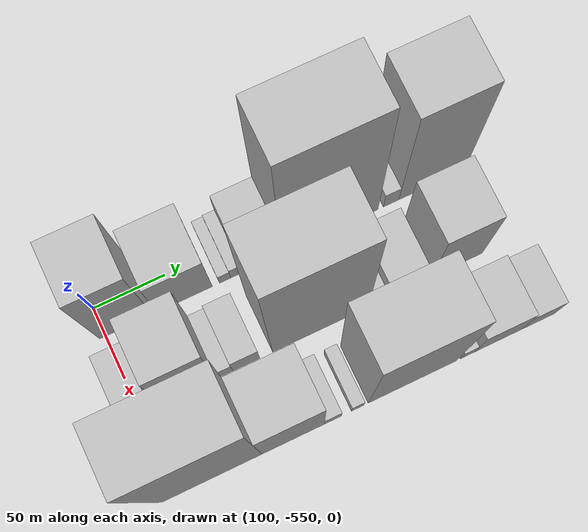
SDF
<sdf version="1.6">
 <world name="default">
  <model name="building_1">
   <static>1</static>
   <pose>100.0000 -535.5505 0 0.000000 0.000000 0.000000</pose>
   <link name="link">
    <pose>0 0 58.50 0 0 0</pose>
    <collision name="collision"><geometry><box><size>40.0000 36.8990 117.0000</size></box></geometry></collision>
    <visual name="visual">
     <cast_shadows>0</cast_shadows>
     <geometry><box><size>40.0000 36.8990 117.0000</size></box></geometry>
     <material>
      <script>
       <uri>model://HANNAS_wall/materials/scripts</uri>
       <uri>model://HANNAS_wall/materials/textures</uri>
       <name>vrc/HANNAS_wall</name>
      </script>
     </material>
    </visual>
   </link>
  </model>
  <model name="building_2">
   <static>1</static>
   <pose>100.0000 -494.7667 0 0.000000 0.000000 0.000000</pose>
   <link name="link">
    <pose>0 0 36.00 0 0 0</pose>
    <collision name="collision"><geometry><box><size>40.0000 38.6686 72.0000</size></box></geometry></collision>
    <visual name="visual">
     <cast_shadows>0</cast_shadows>
     <geometry><box><size>40.0000 38.6686 72.0000</size></box></geometry>
     <material>
      <script>
       <uri>model://HANNAS_wall/materials/scripts</uri>
       <uri>model://HANNAS_wall/materials/textures</uri>
       <name>vrc/HANNAS_wall</name>
      </script>
     </material>
    </visual>
   </link>
  </model>
  <model name="building_3">
   <static>1</static>
   <pose>100.0000 -466.4745 0 0.000000 0.000000 0.000000</pose>
   <link name="link">
    <pose>0 0 9.00 0 0 0</pose>
    <collision name="collision"><geometry><box><size>40.0000 7.9157 18.0000</size></box></geometry></collision>
    <visual name="visual">
     <cast_shadows>0</cast_shadows>
     <geometry><box><size>40.0000 7.9157 18.0000</size></box></geometry>
     <material>
      <script>
       <uri>model://HANNAS_wall/materials/scripts</uri>
       <uri>model://HANNAS_wall/materials/textures</uri>
       <name>vrc/HANNAS_wall</name>
      </script>
     </material>
    </visual>
   </link>
  </model>
  <model name="building_4">
   <static>1</static>
   <pose>100.0000 -458.2818 0 0.000000 0.000000 0.000000</pose>
   <link name="link">
    <pose>0 0 10.50 0 0 0</pose>
    <collision name="collision"><geometry><box><size>40.0000 8.4698 21.0000</size></box></geometry></collision>
    <visual name="visual">
     <cast_shadows>0</cast_shadows>
     <geometry><box><size>40.0000 8.4698 21.0000</size></box></geometry>
     <material>
      <script>
       <uri>model://HANNAS_wall/materials/scripts</uri>
       <uri>model://HANNAS_wall/materials/textures</uri>
       <name>vrc/HANNAS_wall</name>
      </script>
     </material>
    </visual>
   </link>
  </model>
  <model name="building_5">
   <static>1</static>
   <pose>100.0000 -440.0761 0 0.000000 0.000000 0.000000</pose>
   <link name="link">
    <pose>0 0 27.00 0 0 0</pose>
    <collision name="collision"><geometry><box><size>40.0000 27.9417 54.0000</size></box></geometry></collision>
    <visual name="visual">
     <cast_shadows>0</cast_shadows>
     <geometry><box><size>40.0000 27.9417 54.0000</size></box></geometry>
     <material>
      <script>
       <uri>model://HANNAS_wall/materials/scripts</uri>
       <uri>model://HANNAS_wall/materials/textures</uri>
       <name>vrc/HANNAS_wall</name>
      </script>
     </material>
    </visual>
   </link>
  </model>
  <model name="building_6">
   <static>1</static>
   <pose>100.0000 -391.7738 0 0.000000 0.000000 0.000000</pose>
   <link name="link">
    <pose>0 0 97.50 0 0 0</pose>
    <collision name="collision"><geometry><box><size>40.0000 68.6630 195.0000</size></box></geometry></collision>
    <visual name="visual">
     <cast_shadows>0</cast_shadows>
     <geometry><box><size>40.0000 68.6630 195.0000</size></box></geometry>
     <material>
      <script>
       <uri>model://HANNAS_wall/materials/scripts</uri>
       <uri>model://HANNAS_wall/materials/textures</uri>
       <name>vrc/HANNAS_wall</name>
      </script>
     </material>
    </visual>
   </link>
  </model>
  <model name="building_7">
   <static>1</static>
   <pose>100.0000 -347.8952 0 0.000000 0.000000 0.000000</pose>
   <link name="link">
    <pose>0 0 13.50 0 0 0</pose>
    <collision name="collision"><geometry><box><size>40.0000 11.0942 27.0000</size></box></geometry></collision>
    <visual name="visual">
     <cast_shadows>0</cast_shadows>
     <geometry><box><size>40.0000 11.0942 27.0000</size></box></geometry>
     <material>
      <script>
       <uri>model://HANNAS_wall/materials/scripts</uri>
       <uri>model://HANNAS_wall/materials/textures</uri>
       <name>vrc/HANNAS_wall</name>
      </script>
     </material>
    </visual>
   </link>
  </model>
  <model name="building_8">
   <static>1</static>
   <pose>100.0000 -318.2536 0 0.000000 0.000000 0.000000</pose>
   <link name="link">
    <pose>0 0 79.50 0 0 0</pose>
    <collision name="collision"><geometry><box><size>40.0000 48.1891 159.0000</size></box></geometry></collision>
    <visual name="visual">
     <cast_shadows>0</cast_shadows>
     <geometry><box><size>40.0000 48.1891 159.0000</size></box></geometry>
     <material>
      <script>
       <uri>model://HANNAS_wall/materials/scripts</uri>
       <uri>model://HANNAS_wall/materials/textures</uri>
       <name>vrc/HANNAS_wall</name>
      </script>
     </material>
    </visual>
   </link>
  </model>
  <model name="building_37">
   <static>1</static>
   <pose>155.0000 -549.6959 0 0.000000 0.000000 0.000000</pose>
   <link name="link">
    <pose>0 0 19.50 0 0 0</pose>
    <collision name="collision"><geometry><box><size>40.0000 20.6082 39.0000</size></box></geometry></collision>
    <visual name="visual">
     <cast_shadows>0</cast_shadows>
     <geometry><box><size>40.0000 20.6082 39.0000</size></box></geometry>
     <material>
      <script>
       <uri>model://HANNAS_wall/materials/scripts</uri>
       <uri>model://HANNAS_wall/materials/textures</uri>
       <name>vrc/HANNAS_wall</name>
      </script>
     </material>
    </visual>
   </link>
  </model>
  <model name="building_38">
   <static>1</static>
   <pose>155.0000 -515.3223 0 0.000000 0.000000 0.000000</pose>
   <link name="link">
    <pose>0 0 54.00 0 0 0</pose>
    <collision name="collision"><geometry><box><size>40.0000 36.1389 108.0000</size></box></geometry></collision>
    <visual name="visual">
     <cast_shadows>0</cast_shadows>
     <geometry><box><size>40.0000 36.1389 108.0000</size></box></geometry>
     <material>
      <script>
       <uri>model://HANNAS_wall/materials/scripts</uri>
       <uri>model://HANNAS_wall/materials/textures</uri>
       <name>vrc/HANNAS_wall</name>
      </script>
     </material>
    </visual>
   </link>
  </model>
  <model name="building_39">
   <static>1</static>
   <pose>155.0000 -491.7513 0 0.000000 0.000000 0.000000</pose>
   <link name="link">
    <pose>0 0 12.00 0 0 0</pose>
    <collision name="collision"><geometry><box><size>40.0000 11.0030 24.0000</size></box></geometry></collision>
    <visual name="visual">
     <cast_shadows>0</cast_shadows>
     <geometry><box><size>40.0000 11.0030 24.0000</size></box></geometry>
     <material>
      <script>
       <uri>model://HANNAS_wall/materials/scripts</uri>
       <uri>model://HANNAS_wall/materials/textures</uri>
       <name>vrc/HANNAS_wall</name>
      </script>
     </material>
    </visual>
   </link>
  </model>
  <model name="building_40">
   <static>1</static>
   <pose>155.0000 -476.9109 0 0.000000 0.000000 0.000000</pose>
   <link name="link">
    <pose>0 0 16.50 0 0 0</pose>
    <collision name="collision"><geometry><box><size>40.0000 18.6778 33.0000</size></box></geometry></collision>
    <visual name="visual">
     <cast_shadows>0</cast_shadows>
     <geometry><box><size>40.0000 18.6778 33.0000</size></box></geometry>
     <material>
      <script>
       <uri>model://HANNAS_wall/materials/scripts</uri>
       <uri>model://HANNAS_wall/materials/textures</uri>
       <name>vrc/HANNAS_wall</name>
      </script>
     </material>
    </visual>
   </link>
  </model>
  <model name="building_41">
   <static>1</static>
   <pose>155.0000 -424.9604 0 0.000000 0.000000 0.000000</pose>
   <link name="link">
    <pose>0 0 96.00 0 0 0</pose>
    <collision name="collision"><geometry><box><size>40.0000 67.2231 192.0000</size></box></geometry></collision>
    <visual name="visual">
     <cast_shadows>0</cast_shadows>
     <geometry><box><size>40.0000 67.2231 192.0000</size></box></geometry>
     <material>
      <script>
       <uri>model://HANNAS_wall/materials/scripts</uri>
       <uri>model://HANNAS_wall/materials/textures</uri>
       <name>vrc/HANNAS_wall</name>
      </script>
     </material>
    </visual>
   </link>
  </model>
  <model name="building_42">
   <static>1</static>
   <pose>155.0000 -385.1806 0 0.000000 0.000000 0.000000</pose>
   <link name="link">
    <pose>0 0 13.50 0 0 0</pose>
    <collision name="collision"><geometry><box><size>40.0000 12.3365 27.0000</size></box></geometry></collision>
    <visual name="visual">
     <cast_shadows>0</cast_shadows>
     <geometry><box><size>40.0000 12.3365 27.0000</size></box></geometry>
     <material>
      <script>
       <uri>model://HANNAS_wall/materials/scripts</uri>
       <uri>model://HANNAS_wall/materials/textures</uri>
       <name>vrc/HANNAS_wall</name>
      </script>
     </material>
    </visual>
   </link>
  </model>
  <model name="building_43">
   <static>1</static>
   <pose>155.0000 -365.5989 0 0.000000 0.000000 0.000000</pose>
   <link name="link">
    <pose>0 0 24.00 0 0 0</pose>
    <collision name="collision"><geometry><box><size>40.0000 26.8269 48.0000</size></box></geometry></collision>
    <visual name="visual">
     <cast_shadows>0</cast_shadows>
     <geometry><box><size>40.0000 26.8269 48.0000</size></box></geometry>
     <material>
      <script>
       <uri>model://HANNAS_wall/materials/scripts</uri>
       <uri>model://HANNAS_wall/materials/textures</uri>
       <name>vrc/HANNAS_wall</name>
      </script>
     </material>
    </visual>
   </link>
  </model>
  <model name="building_44">
   <static>1</static>
   <pose>155.0000 -327.8745 0 0.000000 0.000000 0.000000</pose>
   <link name="link">
    <pose>0 0 48.00 0 0 0</pose>
    <collision name="collision"><geometry><box><size>40.0000 36.6219 96.0000</size></box></geometry></collision>
    <visual name="visual">
     <cast_shadows>0</cast_shadows>
     <geometry><box><size>40.0000 36.6219 96.0000</size></box></geometry>
     <material>
      <script>
       <uri>model://HANNAS_wall/materials/scripts</uri>
       <uri>model://HANNAS_wall/materials/textures</uri>
       <name>vrc/HANNAS_wall</name>
      </script>
     </material>
    </visual>
   </link>
  </model>
  <model name="building_68">
   <static>1</static>
   <pose>210.0000 -525.7939 0 0.000000 0.000000 0.000000</pose>
   <link name="link">
    <pose>0 0 94.50 0 0 0</pose>
    <collision name="collision"><geometry><box><size>40.0000 68.4122 189.0000</size></box></geometry></collision>
    <visual name="visual">
     <cast_shadows>0</cast_shadows>
     <geometry><box><size>40.0000 68.4122 189.0000</size></box></geometry>
     <material>
      <script>
       <uri>model://HANNAS_wall/materials/scripts</uri>
       <uri>model://HANNAS_wall/materials/textures</uri>
       <name>vrc/HANNAS_wall</name>
      </script>
     </material>
    </visual>
   </link>
  </model>
  <model name="building_69">
   <static>1</static>
   <pose>210.0000 -470.1183 0 0.000000 0.000000 0.000000</pose>
   <link name="link">
    <pose>0 0 55.50 0 0 0</pose>
    <collision name="collision"><geometry><box><size>40.0000 42.9390 111.0000</size></box></geometry></collision>
    <visual name="visual">
     <cast_shadows>0</cast_shadows>
     <geometry><box><size>40.0000 42.9390 111.0000</size></box></geometry>
     <material>
      <script>
       <uri>model://HANNAS_wall/materials/scripts</uri>
       <uri>model://HANNAS_wall/materials/textures</uri>
       <name>vrc/HANNAS_wall</name>
      </script>
     </material>
    </visual>
   </link>
  </model>
  <model name="building_70">
   <static>1</static>
   <pose>210.0000 -442.7372 0 0.000000 0.000000 0.000000</pose>
   <link name="link">
    <pose>0 0 12.00 0 0 0</pose>
    <collision name="collision"><geometry><box><size>40.0000 11.8231 24.0000</size></box></geometry></collision>
    <visual name="visual">
     <cast_shadows>0</cast_shadows>
     <geometry><box><size>40.0000 11.8231 24.0000</size></box></geometry>
     <material>
      <script>
       <uri>model://HANNAS_wall/materials/scripts</uri>
       <uri>model://HANNAS_wall/materials/textures</uri>
       <name>vrc/HANNAS_wall</name>
      </script>
     </material>
    </visual>
   </link>
  </model>
  <model name="building_71">
   <static>1</static>
   <pose>210.0000 -425.5151 0 0.000000 0.000000 0.000000</pose>
   <link name="link">
    <pose>0 0 10.50 0 0 0</pose>
    <collision name="collision"><geometry><box><size>40.0000 8.6212 21.0000</size></box></geometry></collision>
    <visual name="visual">
     <cast_shadows>0</cast_shadows>
     <geometry><box><size>40.0000 8.6212 21.0000</size></box></geometry>
     <material>
      <script>
       <uri>model://HANNAS_wall/materials/scripts</uri>
       <uri>model://HANNAS_wall/materials/textures</uri>
       <name>vrc/HANNAS_wall</name>
      </script>
     </material>
    </visual>
   </link>
  </model>
  <model name="building_72">
   <static>1</static>
   <pose>210.0000 -387.2562 0 0.000000 0.000000 0.000000</pose>
   <link name="link">
    <pose>0 0 81.00 0 0 0</pose>
    <collision name="collision"><geometry><box><size>40.0000 61.8966 162.0000</size></box></geometry></collision>
    <visual name="visual">
     <cast_shadows>0</cast_shadows>
     <geometry><box><size>40.0000 61.8966 162.0000</size></box></geometry>
     <material>
      <script>
       <uri>model://HANNAS_wall/materials/scripts</uri>
       <uri>model://HANNAS_wall/materials/textures</uri>
       <name>vrc/HANNAS_wall</name>
      </script>
     </material>
    </visual>
   </link>
  </model>
  <model name="building_73">
   <static>1</static>
   <pose>210.0000 -348.2976 0 0.000000 0.000000 0.000000</pose>
   <link name="link">
    <pose>0 0 12.00 0 0 0</pose>
    <collision name="collision"><geometry><box><size>40.0000 10.0205 24.0000</size></box></geometry></collision>
    <visual name="visual">
     <cast_shadows>0</cast_shadows>
     <geometry><box><size>40.0000 10.0205 24.0000</size></box></geometry>
     <material>
      <script>
       <uri>model://HANNAS_wall/materials/scripts</uri>
       <uri>model://HANNAS_wall/materials/textures</uri>
       <name>vrc/HANNAS_wall</name>
      </script>
     </material>
    </visual>
   </link>
  </model>
  <model name="building_74">
   <static>1</static>
   <pose>210.0000 -326.3719 0 0.000000 0.000000 0.000000</pose>
   <link name="link">
    <pose>0 0 28.50 0 0 0</pose>
    <collision name="collision"><geometry><box><size>40.0000 33.8310 57.0000</size></box></geometry></collision>
    <visual name="visual">
     <cast_shadows>0</cast_shadows>
     <geometry><box><size>40.0000 33.8310 57.0000</size></box></geometry>
     <material>
      <script>
       <uri>model://HANNAS_wall/materials/scripts</uri>
       <uri>model://HANNAS_wall/materials/textures</uri>
       <name>vrc/HANNAS_wall</name>
      </script>
     </material>
    </visual>
   </link>
  </model>
  <model name="building_75">
   <static>1</static>
   <pose>210.0000 -297.6768 0 0.000000 0.000000 0.000000</pose>
   <link name="link">
    <pose>0 0 21.00 0 0 0</pose>
    <collision name="collision"><geometry><box><size>40.0000 23.5592 42.0000</size></box></geometry></collision>
    <visual name="visual">
     <cast_shadows>0</cast_shadows>
     <geometry><box><size>40.0000 23.5592 42.0000</size></box></geometry>
     <material>
      <script>
       <uri>model://HANNAS_wall/materials/scripts</uri>
       <uri>model://HANNAS_wall/materials/textures</uri>
       <name>vrc/HANNAS_wall</name>
      </script>
     </material>
    </visual>
   </link>
  </model>
 </world>
</sdf>
